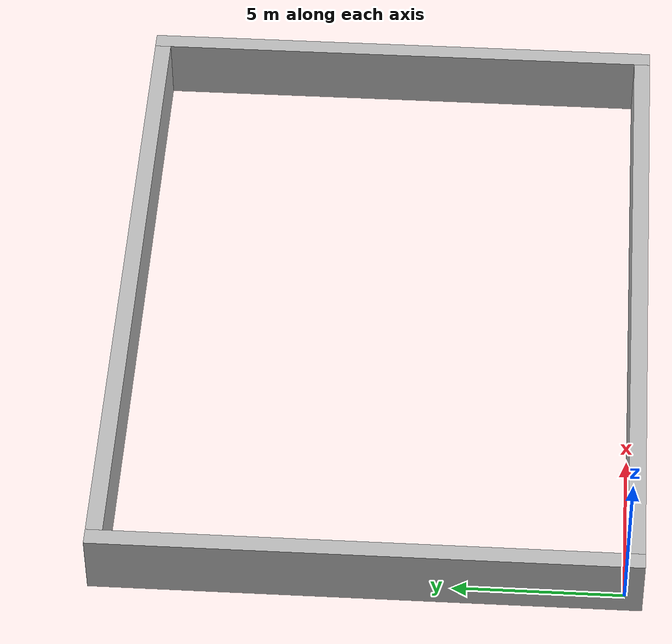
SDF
<?xml version='1.0'?>
<sdf version='1.11'>
  <model name='walls'>
    <static>true</static>

	<link name='wall1'>
	  <pose>10 -0.25 1 0 0 0</pose>
	  <visual name='wall1-v'>
	    <geometry>
		  <box><size>20 0.5 2</size></box>
		</geometry>
	  </visual>
	  <collision name='wall1-c'>
	    <geometry>
		  <box><size>20 0.5 2</size></box>
		</geometry>
	  </collision>
	</link>

	<link name='wall2'>
	  <pose>10 15.25 1 0 0 0</pose>
	  <visual name='wall2-v'>
	    <geometry>
		  <box><size>20 0.5 2</size></box>
		</geometry>
	  </visual>
	  <collision name='wall2-c'>
	    <geometry>
		  <box><size>20 0.5 2</size></box>
		</geometry>
	  </collision>
	</link>

	<link name='wall3'>
	  <pose>-0.25 7.5 1 0 0 0</pose>
	  <visual name='wall3-v'>
	    <geometry>
		  <box><size>0.5 16 2</size></box>
		</geometry>
	  </visual>
	  <collision name='wall3-c'>
	    <geometry>
		  <box><size>0.5 16 2</size></box>
		</geometry>
	  </collision>
	</link>

	<link name='wall4'>
	  <pose>20.25 7.5 1 0 0 0</pose>
	  <visual name='wall4-v'>
	    <geometry>
		  <box><size>0.5 16 2</size></box>
		</geometry>
	  </visual>
	  <collision name='wall4-c'>
	    <geometry>
		  <box><size>0.5 16 2</size></box>
		</geometry>
	  </collision>
	</link>

  </model>
</sdf>
